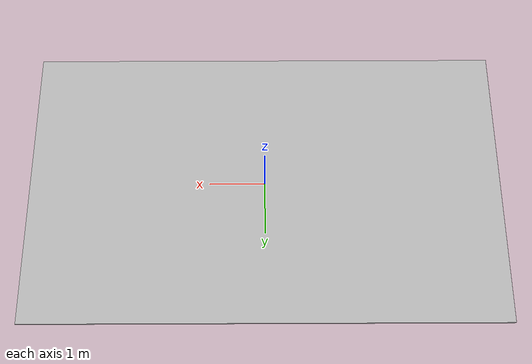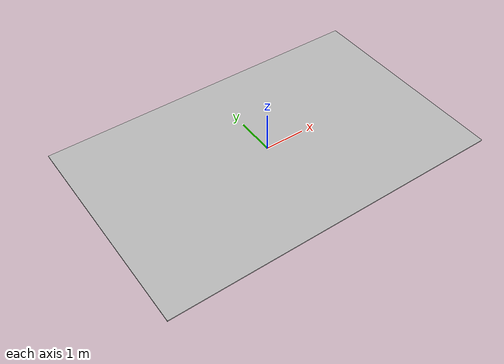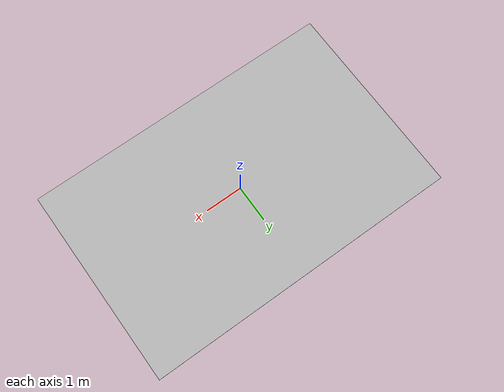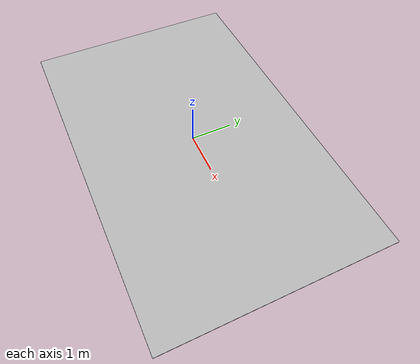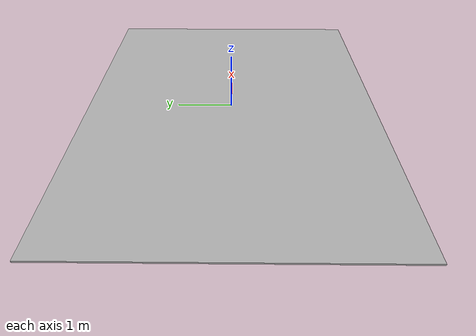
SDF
<?xml version="1.0" ?>
<sdf version="1.4">
  <!-- We use a custom world for the rrbot so that the camera angle is launched correctly -->

  <world name="default">

    <scene>
        <background>
            <color>0 0 0 1</color>
        </background>
        <shadows>0</shadows>
    </scene>

   <!-- Add a sun light -->
    <light name="sun" type="directional">
      <cast_shadows>true</cast_shadows>
      <pose>0 0 10 0 0 0</pose> <!-- Center above the world at z=10 -->
      <diffuse>1 1 1 1</diffuse> <!-- White sunlight -->
      <specular>0.1 0.1 0.1 1</specular>
      <attenuation>
        <range>1000</range>
        <constant>0.9</constant>
        <linear>0.01</linear>
        <quadratic>0.001</quadratic>
      </attenuation>
      <direction>0 0 -1</direction> <!-- Shining straight down -->
    </light>

    <include>
      <uri>model://3lanemap</uri>
      <pose>0 0 0 0 0 0</pose>
      <surface>
        <friction>
          <ode>
            <mu>1.0</mu>       <!-- Primary friction coefficient -->
            <mu2>1.0</mu2>     <!-- Secondary friction coefficient -->
            <fdir1>1 0 0</fdir1> <!-- Friction direction (optional) -->
            <slip1>0.0</slip1> <!-- Reducing slip -->
            <slip2>0.0</slip2>
          </ode>
        </friction>
      </surface>
    </include>

      <plugin name="gazebo_ros_state" filename="libgazebo_ros_state.so">
      <ros>
        <namespace>/gazebo</namespace>
      </ros>
      <update_rate>5.0</update_rate>
    </plugin>

    <plugin name="gazebo_ros_factory" filename="libgazebo_ros_factory.so"/>

  </world>
</sdf>

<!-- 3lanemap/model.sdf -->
<sdf version='1.4'>
  <model name="3lanemap">
      <static>1</static>
      <link name='link'>
        <visual name='visual'>
          <geometry>
            <mesh>
              <uri>model://3lanemap/meshes/3lanemap.dae</uri>
              <scale>1.0 1.0 1.0</scale>
            </mesh>
          </geometry>
        </visual>

        <collision name='collision'>
          <laser_retro>0</laser_retro>
          <max_contacts>10</max_contacts>
          <pose frame=''>0 0 0 0 -0 0</pose>
          <geometry>
            <mesh>
              <uri>model://3lanemap/meshes/3lanemap.stl</uri>
              <scale>1.0 1.0 1.0</scale>
            </mesh>
          </geometry>
       </collision>

        <velocity_decay>
          <linear>0.000000</linear>
          <angular>0.000000</angular>
        </velocity_decay>
        <self_collide>0</self_collide>
        <kinematic>0</kinematic>
        <gravity>1</gravity>
      </link>
  </model>
</sdf>
